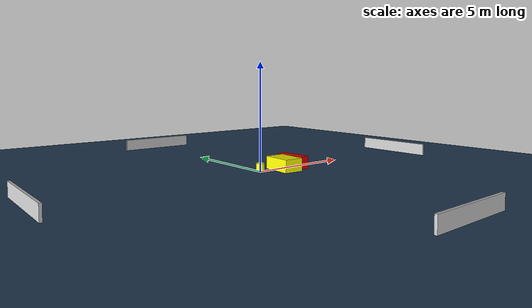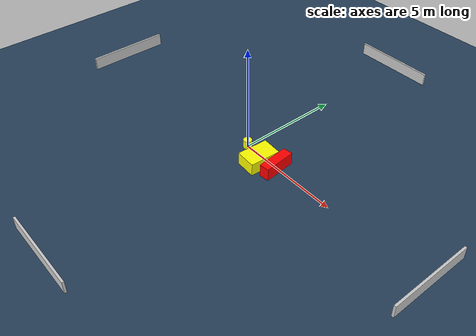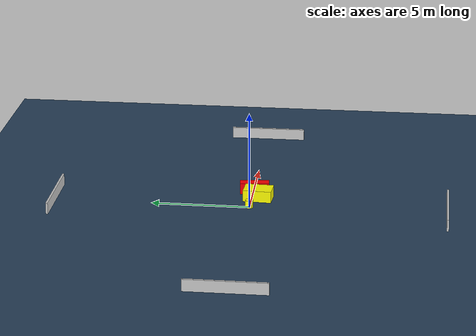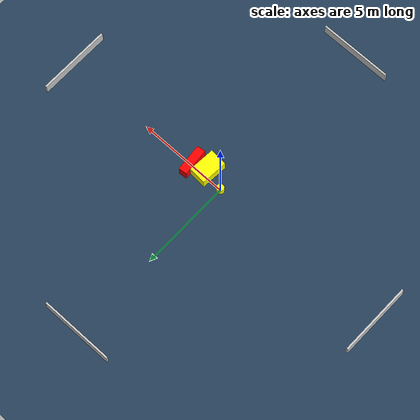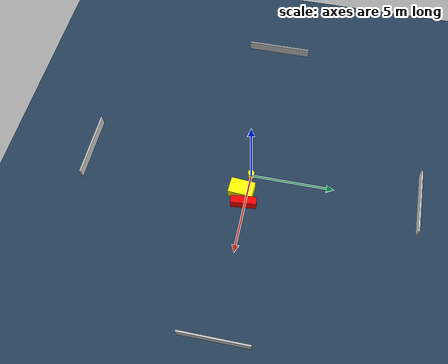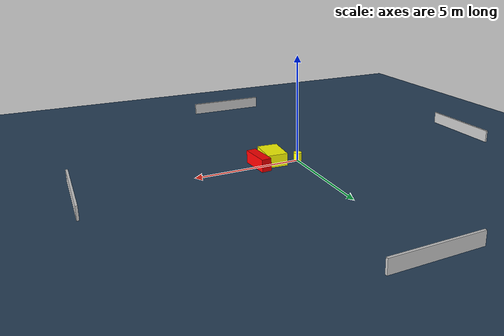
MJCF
<?xml version="1.0" ?>
<mujoco model="generated_environment">
  <option timestep="0.01" integrator="RK4" cone="elliptic"/>
  <default>
    <geom density="1"/>
  </default>
  <asset>
    <texture builtin="gradient" height="3072" name="skybox" rgb1="0.3 0.5 0.7" rgb2="0 0 0" type="skybox" width="512"/>
    <texture builtin="checker" height="300" name="groundplane" rgb1="0.2 0.3 0.4" rgb2="0.1 0.2 0.3" type="2d" width="300"/>
    <material name="groundplane" reflectance="0.2" texrepeat="5 5" texture="groundplane"/>
  </asset>
  <worldbody>
    <light dir="0 0 -1" directional="true" pos="0 0 1.5"/>
    <geom condim="3" friction="0.5 0.005 0.001" material="groundplane" name="floor" pos="0 0 0" size="0 0 0.05" type="plane"/>
    <body name="walls">
      <geom name="wall_1" condim="4" pos="-10.0 0.0 0.3" rgba="0.800000011920929 0.800000011920929 0.800000011920929 1.0" size="0.05 2.0 0.3" type="box"/>
      <geom name="wall_2" condim="4" pos="10.0 0.0 0.3" rgba="0.800000011920929 0.800000011920929 0.800000011920929 1.0" size="0.05 2.0 0.3" type="box"/>
      <geom name="wall_3" condim="4" pos="0.0 -10.0 0.3" rgba="0.800000011920929 0.800000011920929 0.800000011920929 1.0" size="2.0 0.05 0.3" type="box"/>
      <geom name="wall_4" condim="4" pos="0.0 10.0 0.3" rgba="0.800000011920929 0.800000011920929 0.800000011920929 1.0" size="2.0 0.05 0.3" type="box"/>
    </body>
    <body name="robot">
      <joint name="joint_x" type="slide" pos="0 0 0" axis="1 0 0"/>
      <joint name="joint_y" type="slide" pos="0 0 0" axis="0 1 0"/>
      <geom name="robot" type="cylinder" pos="0.0 0.0 0.2" size="0.2 0.2 0.0" mass="5.0" friction="1.0 0.005 0.0001" condim="4" rgba="1.0 1.0 0.0 1.0"/>
    </body>
    <body name="obstacle_1_movable">
      <geom name="obstacle_1_movable" condim="4" pos="1.1552083410369185 -0.3441374275836726 0.3" euler="0 0 266.278905374148" friction="0.0 0.005 0.001" rgba="1.0 1.0 0.0 1.0" size="0.7275720996165163 0.47934007588980476 0.3" type="box" mass="0.1"/>
      <joint type="free"/>
    </body>
    <body name="obstacle_2_static">
      <geom name="obstacle_2_static" condim="4" pos="1.9558138503551161 -0.06470453621240731 0.3" euler="0 0 95.66402631394696" friction="0.0 0.005 0.001" rgba="1.0 0.0 0.0 1.0" size="0.752467671507763 0.2313620000731482 0.3" type="box"/>
    </body>
  </worldbody>
  <actuator>
    <motor name="actuator_x" joint="joint_x" gear="1" ctrlrange="-1 1"/>
    <motor name="actuator_y" joint="joint_y" gear="1" ctrlrange="-1 1"/>
  </actuator>
</mujoco>
